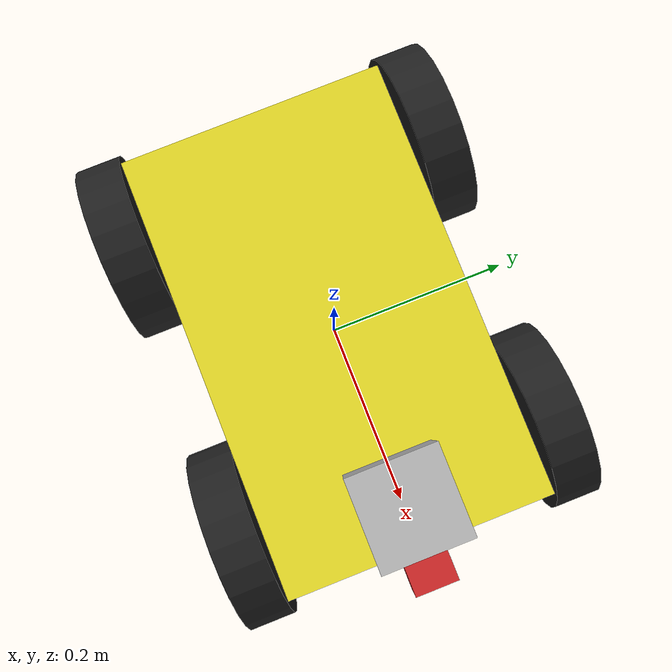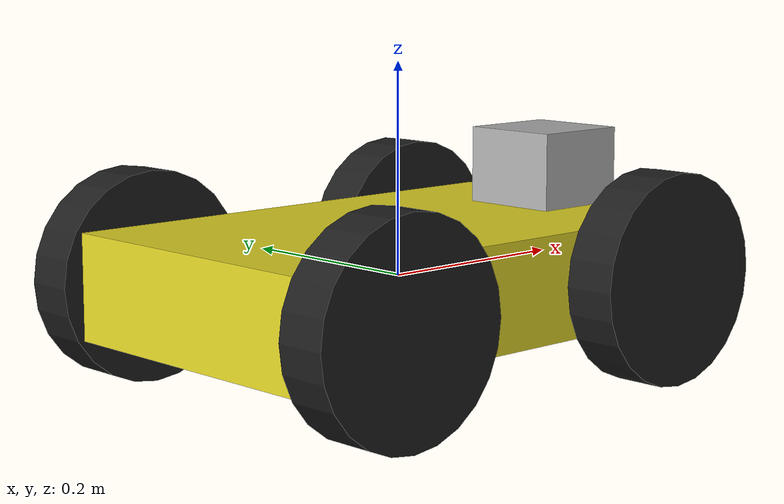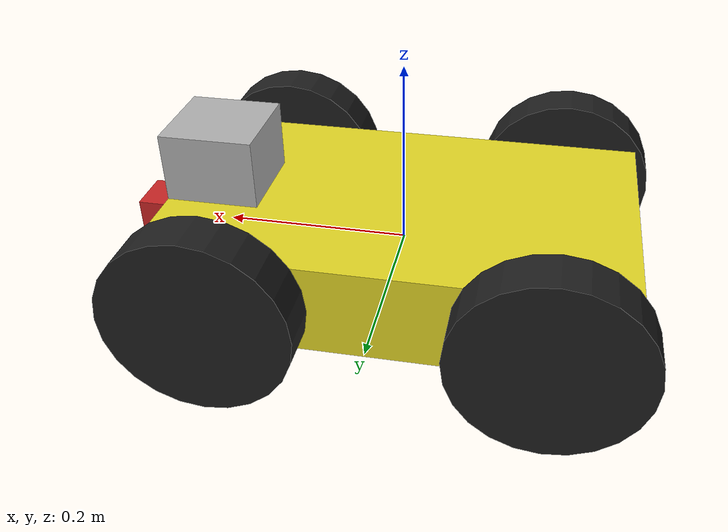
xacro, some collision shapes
<?xml version='1.0'?>

<robot name="my_robot" xmlns:xacro="http://www.ros.org/wiki/xacro">

  <xacro:include filename="$(find my_robot)/urdf/my_robot.gazebo" />

  <gazebo reference="back_left_wheel">
    <material>Gazebo/Black</material>
  </gazebo>

  <gazebo reference="back_right_wheel">
    <material>Gazebo/Black</material>
  </gazebo>

  <gazebo reference="front_right_wheel">
    <material>Gazebo/Black</material>
  </gazebo>

  <gazebo reference="front_left_wheel">
    <material>Gazebo/Black</material>
  </gazebo>

  <gazebo reference="camera">
    <material>Gazebo/Red</material>
  </gazebo>

  <gazebo reference="chassis">
    <material>Gazebo/Yellow</material>
  </gazebo>

    <link name="robot_footprint"></link>

    <joint name="robot_footprint_joint" type="fixed">
        <origin xyz="0 0 0" rpy="0 0 0"/>
        <parent link="robot_footprint"/>
        <child link="chassis"/>
    </joint>

    <!-- Chassis -->

    <link name="chassis">
        <pose>0 0 0.1 0 0 0 </pose>

        <inertial>
            <mass value="15.0"/>
            <origin xyz="0 0 0" rpy="0 0 0"/>
            <inertia
                ixx="0.1" ixy="0" ixz="0"
                iyy="0.1" iyz="0"
                izz="0.1"
            />
        </inertial>

        <collision name="collision">
            <origin xyz="0 0 0" rpy="0 0 0"/>
            <geometry>
                <box size="0.5 0.3 0.1"/>
            </geometry>
        </collision>

        <visual name="chassis_visual">
            <origin xyz="0 0 0" rpy="0 0 0"/>
            <geometry>
                <box size="0.5 0.3 0.1"/>
            </geometry>
        </visual>

    </link>

    <joint type="continuous" name="back_left_wheel_hinge">
        <origin xyz="-0.17 0.175 0" rpy="0 0 0" />
        <parent link="chassis"/>
        <child link="back_left_wheel" />
        <axis xyz="0 1 0" rpy="0 0 0" />
        <limit effort="10000" velocity="1000" />
        <dynamics damping="1.0" friction="1.0" />
    </joint>

    <!-- back_left_wheel link -->
    <link name="back_left_wheel">
        <inertial>
          <mass value="5"/>
          <origin xyz="0 0 0" rpy="1.5707 0 0"/>
          <inertia
            ixx="0.1" ixy="0.0" ixz="0.0"
            iyy="0.1" iyz="0.0"
            izz="0.1"
          />
        </inertial>

        <collision>
          <origin xyz="0 0 0" rpy="0 1.5707 1.5707"/>
          <geometry>
            <cylinder radius="0.1" length="0.05"/>
          </geometry>
        </collision>

        <visual>
          <origin xyz="0 0 0" rpy="1.5707 0 0"/>
          <geometry>
            <cylinder radius="0.1" length="0.05"/>
          </geometry>
          <material name="black"/>
        </visual>
    </link>

    <joint type="continuous" name="back_right_wheel_hinge">
        <origin xyz="-0.17 -0.175 0" rpy="0 0 0" />
        <parent link="chassis"/>
        <child link="back_right_wheel" />
        <axis xyz="0 1 0" rpy="0 0 0" />
        <limit effort="10000" velocity="1000" />
        <dynamics damping="1.0" friction="1.0" />
    </joint>

    <!-- back_right_wheel link -->
    <link name="back_right_wheel">
        <inertial>
          <mass value="5"/>
          <origin xyz="0 0 0" rpy="1.5707 0 0"/>
          <inertia
            ixx="0.1" ixy="0.0" ixz="0.0"
            iyy="0.1" iyz="0.0"
            izz="0.1"
          />
        </inertial>

        <collision>
          <origin xyz="0 0 0" rpy="0 1.5707 1.5707"/>
          <geometry>
            <cylinder radius="0.1" length="0.05"/>
          </geometry>
        </collision>

        <visual>
          <origin xyz="0 0 0" rpy="1.5707 0 0"/>
          <geometry>
            <cylinder radius="0.1" length="0.05"/>
          </geometry>
          <material name="black"/>
        </visual>
    </link>

    <joint type="continuous" name="front_left_wheel_hinge">
        <origin xyz="0.17 0.175 0" rpy="0 0 0" />
        <parent link="chassis"/>
        <child link="front_left_wheel" />
        <axis xyz="0 1 0" rpy="0 0 0" />
        <limit effort="10000" velocity="1000" />
        <dynamics damping="1.0" friction="1.0" />
    </joint>

     <!-- front_right_wheel link -->
    <link name="front_left_wheel">
        <inertial>
          <mass value="5"/>
          <origin xyz="0 0 0" rpy="1.5707 0 0"/>
          <inertia
            ixx="0.1" ixy="0.0" ixz="0.0"
            iyy="0.1" iyz="0.0"
            izz="0.1"
          />
        </inertial>

        <collision>
          <origin xyz="0 0 0" rpy="0 1.5707 1.5707"/>
          <geometry>
            <cylinder radius="0.1" length="0.05"/>
          </geometry>
        </collision>

        <visual>
          <origin xyz="0 0 0" rpy="1.5707 0 0"/>
          <geometry>
            <cylinder radius="0.1" length="0.05"/>
          </geometry>
          <material name="black"/>
        </visual>
    </link>

    <joint type="continuous" name="front_right_wheel_hinge">
        <origin xyz="0.17 -0.175 0" rpy="0 0 0" />
        <parent link="chassis"/>
        <child link="front_right_wheel" />
        <axis xyz="0 1 0" rpy="0 0 0" />
        <limit effort="10000" velocity="1000" />
        <dynamics damping="1.0" friction="1.0" />
    </joint>

     <!-- front_right_wheel link -->
    <link name="front_right_wheel">
        <inertial>
          <mass value="5"/>
          <origin xyz="0 0 0" rpy="1.5707 0 0"/>
          <inertia
            ixx="0.1" ixy="0.0" ixz="0.0"
            iyy="0.1" iyz="0.0"
            izz="0.1"
          />
        </inertial>

        <collision>
          <origin xyz="0 0 0" rpy="0 1.5707 1.5707"/>
          <geometry>
            <cylinder radius="0.1" length="0.05"/>
          </geometry>
        </collision>

        <visual>
          <origin xyz="0 0 0" rpy="1.5707 0 0"/>
          <geometry>
            <cylinder radius="0.1" length="0.05"/>
          </geometry>
          <material name="black"/>
        </visual>
    </link>

    <joint name="camera_joint" type="fixed">
        <origin xyz="0.275 0 0" rpy="0 0 0" />
        <parent link="chassis"/>
        <child link="camera" />
        <axis xyz="0 1 0"/>
      </joint>

    <!-- Camera link -->
    <link name="camera">
        <inertial>
          <mass value="0.1"/>
          <origin xyz="0 0 0" rpy="0 0 0"/>
          <inertia
            ixx="1e-6" ixy="0.0" ixz="0.0"
            iyy="1e-6" iyz="0.0"
            izz="1e-6"
          />
        </inertial>

        <collision>
          <origin xyz="0 0 0" rpy="0 0 0"/>
          <geometry>
            <box size="0.05 0.05 0.05"/>
          </geometry>
        </collision>

        <visual>
          <origin xyz="0 0 0" rpy="0 0 0"/>
          <geometry>
            <box size="0.05 0.05 0.05"/>
          </geometry>
        </visual>

    </link>

    <joint name="hokuyo_joint" type="fixed">
        <origin xyz="0.2 0 0.075" rpy="0 0 0" />
        <parent link="chassis"/>
        <child link="hokuyo" />
        <axis xyz="0 1 0"/>
      </joint>

    <link name="hokuyo">
        <inertial>
          <mass value="1e-5"/>
          <origin xyz="0 0 0" rpy="0 0 0"/>
          <inertia
            ixx="1e-6" ixy="0.0" ixz="0.0"
            iyy="1e-6" iyz="0.0"
            izz="1e-6"
          />
        </inertial>

        <collision>
          <origin xyz="0 0 0" rpy="0 0 0"/>
          <geometry>
            <box size="0.1 0.1 0.1"/>
          </geometry>
        </collision>

        <visual>
          <origin xyz="0 0 0" rpy="0 0 0"/>
          <geometry>
            <mesh filename="package://my_robot/meshes/hokuyo.dae"/>
          </geometry>
        </visual>
    </link>

</robot>
